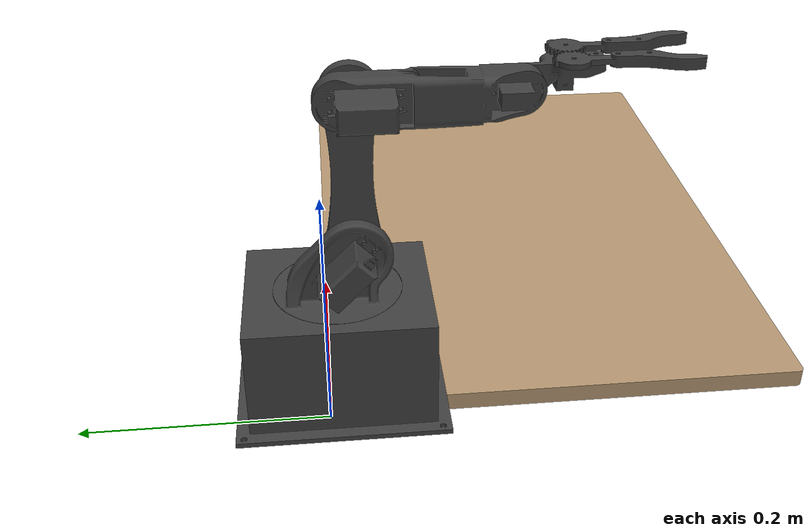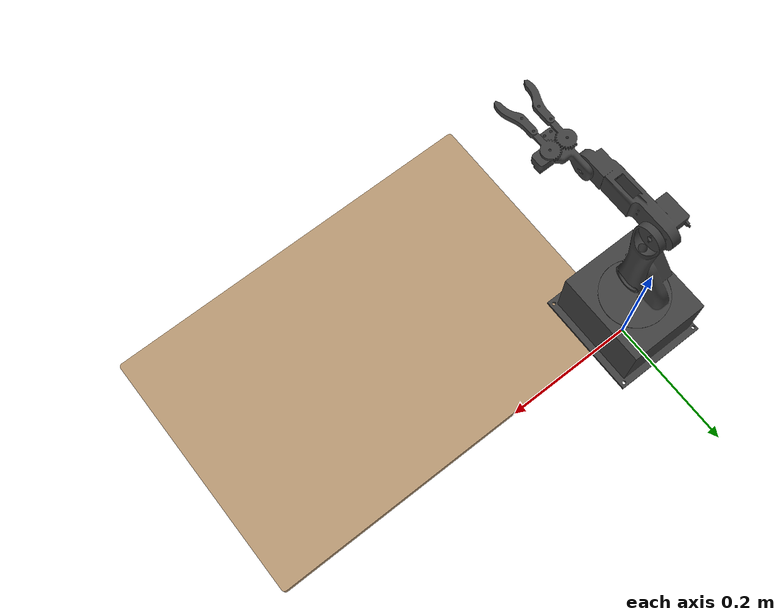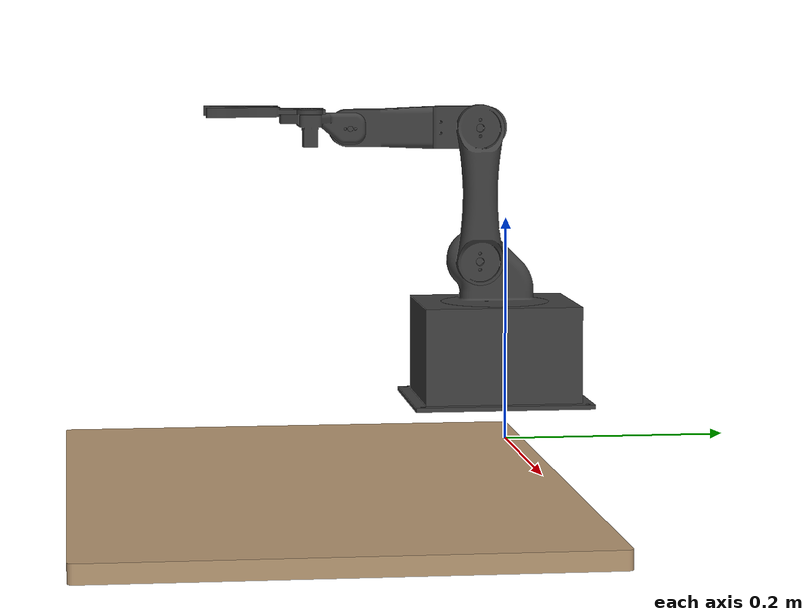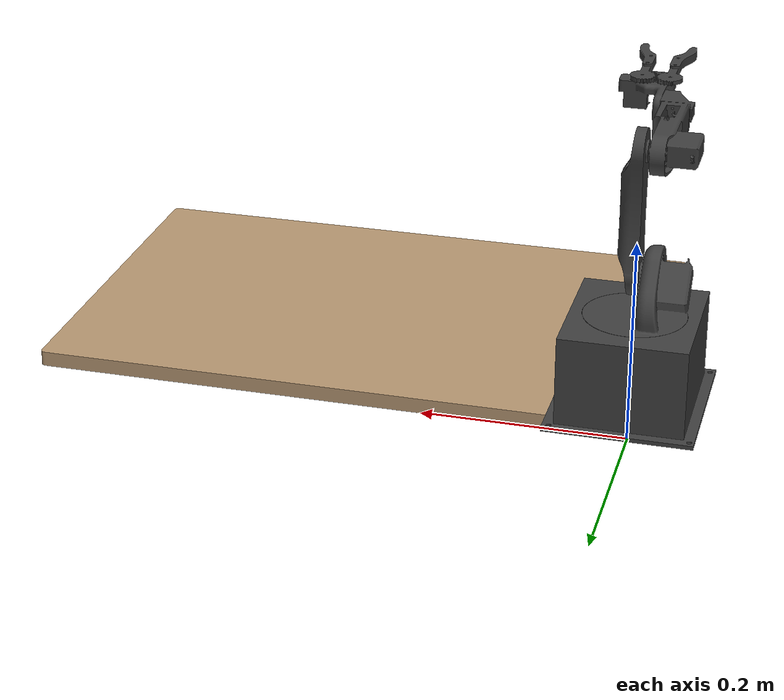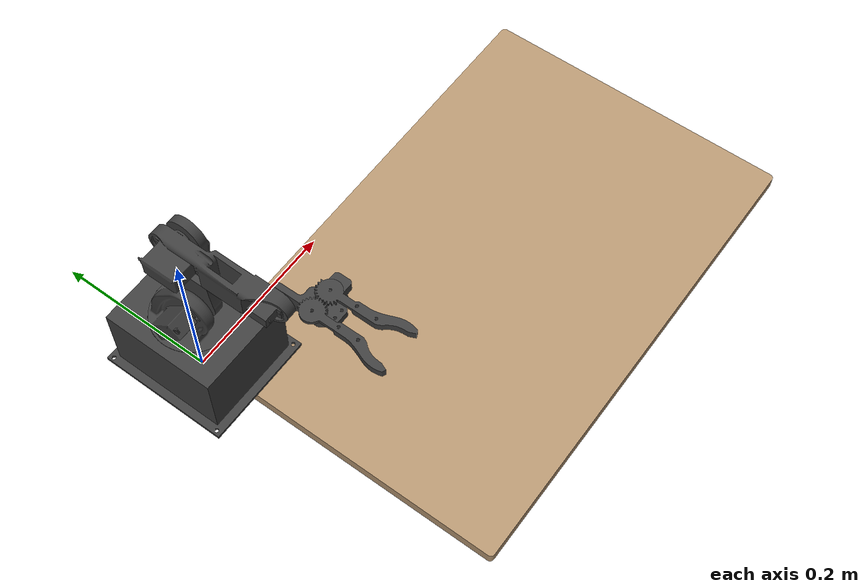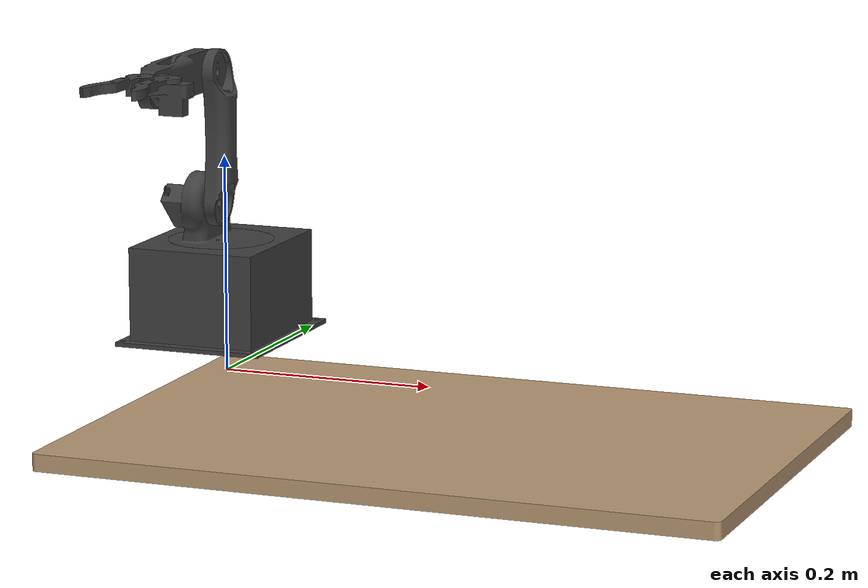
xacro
<?xml version="1.0" ?>
<robot name="robotic_arm" xmlns:xacro="http://www.ros.org/wiki/xacro">

<xacro:include filename="$(find robotic_arm_description)/urdf/materials.xacro" />
<xacro:include filename="$(find robotic_arm_description)/urdf/robotic_arm.trans" />
<xacro:include filename="$(find robotic_arm_description)/urdf/robotic_arm_gazebo.xacro"/>
<xacro:include filename="$(find robotic_arm_description)/urdf/robotic_arm_controllers.xacro"/>

<!-- Properties -->
<xacro:property name="PI" value="1.570796"/>

<!-- Links -->
<link name = "world"/>

<link name="base_link">
  <inertial>
    <origin xyz="4.1292719567255465e-17 -0.1275 0.0075" rpy="0 0 0"/>
    <mass value="2.5408670074548567"/>
    <inertia ixx="0.033061" iyy="0.074955" izz="0.107921" ixy="-0.0" iyz="0.0" ixz="0.0"/>
  </inertial>
  <visual>
    <origin xyz="0 0 0" rpy="0 0 0"/>
    <geometry>
      <mesh filename="package://robotic_arm_description/meshes/base_link.stl" scale="0.001 0.001 0.001"/>
    </geometry>
    <material name="oak"/>
  </visual>
  <collision>
    <origin xyz="0 0 0" rpy="0 0 0"/>
    <geometry>
      <mesh filename="package://robotic_arm_description/meshes/base_link.stl" scale="0.001 0.001 0.001"/>
    </geometry>
  </collision>
</link>

<link name="base">
  <inertial>
    <origin xyz="3.3070895591155684e-07 -0.06999939486232219 0.051365620594267386" rpy="0 0 0"/>
    <mass value="0.5102582987586253"/>
    <inertia ixx="0.001541" iyy="0.00162" izz="0.002267" ixy="0.0" iyz="0.0" ixz="0.0"/>
  </inertial>
  <visual>
    <origin xyz="-0.0 -0.07 -0.015" rpy="0 0 0"/>
    <geometry>
      <mesh filename="package://robotic_arm_description/meshes/base.stl" scale="0.001 0.001 0.001"/>
    </geometry>
    <material name="pa_12_nylon_pa_603cf_with_eos_p_3d_printers"/>
  </visual>
  <collision>
    <origin xyz="-0.0 -0.07 -0.015" rpy="0 0 0"/>
    <geometry>
      <mesh filename="package://robotic_arm_description/meshes/base.stl" scale="0.001 0.001 0.001"/>
    </geometry>
  </collision>
</link>

<link name="waist">
  <inertial>
    <origin xyz="-0.013899791072812253 -0.003284120079222943 0.02372142968591144" rpy="0 0 0"/>
    <mass value="0.11734363935702768"/>
    <inertia ixx="8.6e-05" iyy="7.9e-05" izz="8.5e-05" ixy="-3e-06" iyz="1.1e-05" ixz="1.4e-05"/>
  </inertial>
  <visual>
    <origin xyz="0.0 0.0 -0.101" rpy="0 0 0"/>
    <geometry>
      <mesh filename="package://robotic_arm_description/meshes/waist.stl" scale="0.001 0.001 0.001"/>
    </geometry>
    <material name="pa_12_nylon_pa_603cf_with_eos_p_3d_printers"/>
  </visual>
  <collision>
    <origin xyz="0.0 0.0 -0.101" rpy="0 0 0"/>
    <geometry>
      <mesh filename="package://robotic_arm_description/meshes/waist.stl" scale="0.001 0.001 0.001"/>
    </geometry>
  </collision>
</link>

<link name="link_1">
  <inertial>
    <origin xyz="0.007817729878361625 -4.0523557253042963e-07 0.06000021649587692" rpy="0 0 0"/>
    <mass value="0.07112302510728019"/>
    <inertia ixx="0.000121" iyy="0.000116" izz="1e-05" ixy="0.0" iyz="-0.0" ixz="0.0"/>
  </inertial>
  <visual>
    <origin xyz="0.001 0.014069 -0.141262" rpy="0 0 0"/>
    <geometry>
      <mesh filename="package://robotic_arm_description/meshes/link_1.stl" scale="0.001 0.001 0.001"/>
    </geometry>
    <material name="pa_12_nylon_pa_603cf_with_eos_p_3d_printers"/>
  </visual>
  <collision>
    <origin xyz="0.001 0.014069 -0.141262" rpy="0 0 0"/>
    <geometry>
      <mesh filename="package://robotic_arm_description/meshes/link_1.stl" scale="0.001 0.001 0.001"/>
    </geometry>
  </collision>
</link>

<link name="link_2">
  <inertial>
    <origin xyz="-0.01594540180295605 -0.046193837589282 4.672518474457821e-05" rpy="0 0 0"/>
    <mass value="0.11456681455688399"/>
    <inertia ixx="0.000224" iyy="2.7e-05" izz="0.00023" ixy="2.7e-05" iyz="0.0" ixz="-0.0"/>
  </inertial>
  <visual>
    <origin xyz="0.001 0.014069 -0.261262" rpy="0 0 0"/>
    <geometry>
      <mesh filename="package://robotic_arm_description/meshes/link_2.stl" scale="0.001 0.001 0.001"/>
    </geometry>
    <material name="pa_12_nylon_pa_603cf_with_eos_p_3d_printers"/>
  </visual>
  <collision>
    <origin xyz="0.001 0.014069 -0.261262" rpy="0 0 0"/>
    <geometry>
      <mesh filename="package://robotic_arm_description/meshes/link_2.stl" scale="0.001 0.001 0.001"/>
    </geometry>
  </collision>
</link>

<link name="gripper_base">
  <inertial>
    <origin xyz="0.016989765812988437 -0.03097536759348493 0.0043010847265131935" rpy="0 0 0"/>
    <mass value="0.02850874527831614"/>
    <inertia ixx="1e-05" iyy="7e-06" izz="1.4e-05" ixy="3e-06" iyz="1e-06" ixz="1e-06"/>
  </inertial>
  <visual>
    <origin xyz="-0.00285 0.131419 -0.261562" rpy="0 0 0"/>
    <geometry>
      <mesh filename="package://robotic_arm_description/meshes/gripper_base.stl" scale="0.001 0.001 0.001"/>
    </geometry>
    <material name="pa_12_nylon_pa_603cf_with_eos_p_3d_printers"/>
  </visual>
  <collision>
    <origin xyz="-0.00285 0.131419 -0.261562" rpy="0 0 0"/>
    <geometry>
      <mesh filename="package://robotic_arm_description/meshes/gripper_base.stl" scale="0.001 0.001 0.001"/>
    </geometry>
  </collision>
</link>

<link name="gripper_finger_1">
  <inertial>
    <origin xyz="0.0025925452739243675 -0.04003700818287059 0.002000392615642277" rpy="0 0 0"/>
    <mass value="0.00844478254120791"/>
    <inertia ixx="7e-06" iyy="0.0" izz="8e-06" ixy="1e-06" iyz="0.0" ixz="0.0"/>
  </inertial>
  <visual>
    <origin xyz="-0.02875 0.169419 -0.276912" rpy="0 0 0"/>
    <geometry>
      <mesh filename="package://robotic_arm_description/meshes/gripper_finger_1.stl" scale="0.001 0.001 0.001"/>
    </geometry>
    <material name="pa_12_nylon_pa_603cf_with_eos_p_3d_printers"/>
  </visual>
  <collision>
    <origin xyz="-0.02875 0.169419 -0.276912" rpy="0 0 0"/>
    <geometry>
      <mesh filename="package://robotic_arm_description/meshes/gripper_finger_1.stl" scale="0.001 0.001 0.001"/>
    </geometry>
  </collision>
</link>

<link name="gripper_finger_2">
  <inertial>
    <origin xyz="-0.00259254527392403 -0.04003700818287059 0.002000392615642388" rpy="0 0 0"/>
    <mass value="0.00844478254120791"/>
    <inertia ixx="7e-06" iyy="0.0" izz="8e-06" ixy="-1e-06" iyz="0.0" ixz="-0.0"/>
  </inertial>
  <visual>
    <origin xyz="-0.00185 0.169419 -0.275562" rpy="0 0 0"/>
    <geometry>
      <mesh filename="package://robotic_arm_description/meshes/gripper_finger_2.stl" scale="0.001 0.001 0.001"/>
    </geometry>
    <material name="pa_12_nylon_pa_603cf_with_eos_p_3d_printers"/>
  </visual>
  <collision>
    <origin xyz="-0.00185 0.169419 -0.275562" rpy="0 0 0"/>
    <geometry>
      <mesh filename="package://robotic_arm_description/meshes/gripper_finger_2.stl" scale="0.001 0.001 0.001"/>
    </geometry>
  </collision>
</link>

<joint name = "virtual_joint" type= "fixed">
  <origin xyz="0.0 0.0 0.0" rpy="0.0 0.0 0.0"/>
  <parent link="world"/>
  <child link="base_link"/>
</joint>

<joint name="rigid_1" type="fixed">
  <origin xyz="0.0 0.07 0.015" rpy="0 0 0"/>
  <parent link="base_link"/>
  <child link="base"/>
</joint>

<joint name="base_waist_joint" type="revolute">
  <origin xyz="-0.0 -0.07 0.086" rpy="0 0 0"/>
  <parent link="base"/>
  <child link="waist"/>
  <axis xyz="0.0 0.0 1.0"/>
  <limit upper="1.570796" lower="-1.570796" effort="100" velocity="100"/>
</joint>

<joint name="waist_link1_joint" type="revolute">
  <origin xyz="-0.001 -0.014069 0.040262" rpy="0 0 0"/>
  <parent link="waist"/>
  <child link="link_1"/>
  <axis xyz="1.0 0.0 -0.0"/>
  <limit upper="1.570796" lower="-1.570796" effort="100" velocity="100"/>
</joint>

<joint name="link1_link2_joint" type="revolute">
  <origin xyz="0.0 0.0 0.12" rpy="0 0 0"/>
  <parent link="link_1"/>
  <child link="link_2"/>
  <axis xyz="-1.0 0.0 -0.0"/>
  <limit upper="3.141593" lower="0.0" effort="100" velocity="100"/>
</joint>

<joint name="link2_gripper_base_joint" type="revolute">
  <origin xyz="0.00385 -0.11735 0.0003" rpy="0 0 0"/>
  <parent link="link_2"/>
  <child link="gripper_base"/>
  <axis xyz="1.0 0.0 0.0"/>
  <limit upper="1.570796" lower="-1.570796" effort="100" velocity="100"/>
</joint>

<joint name="right_gripper_joint" type="revolute">
  <origin xyz="-0.001 -0.038 0.014" rpy="0 0 0"/>
  <parent link="gripper_base"/>
  <child link="gripper_finger_2"/>
  <axis xyz="0.0 0.0 -1.0"/>
  <limit upper="0.785398" lower="0.0" effort="100" velocity="100"/>
</joint>

<joint name="left_gripper_joint" type="revolute">
  <origin xyz="0.0259 -0.038 0.01535" rpy="0 0 0"/>
  <parent link="gripper_base"/>
  <child link="gripper_finger_1"/>
  <axis xyz="-0.0 -0.0 1.0"/>
  <mimic joint = "right_gripper_joint" multiplier = "1.0"/>
  <limit upper="-0.785398" lower="0.0" effort="100" velocity="100"/>
</joint>

</robot>

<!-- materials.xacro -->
<robot name="robotic_arm" xmlns:xacro="http://www.ros.org/wiki/xacro" >

<material name="silver_default">
  <color rgba="0.700 0.700 0.700 1.000"/>
</material>

<material name="oak">
  <color rgba="0.7098 0.5882 0.4431 1.000"/>
</material>

<material name="pa_12_nylon_pa_603cf_with_eos_p_3d_printers">
  <color rgba="0.24705882352941178 0.24705882352941178 0.24705882352941178 1.0"/>
</material>
<material name="paint_enamel_glossy_blue">
  <color rgba="0.18823529411764706 0.23137254901960785 0.5882352941176471 1.0"/>
</material>
<material name="opaque160160160">
  <color rgba="0.6274509803921569 0.6274509803921569 0.6274509803921569 1.0"/>
</material>

</robot>

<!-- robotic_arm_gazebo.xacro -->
<robot name="robotic_arm" xmlns:xacro="http://www.ros.org/wiki/xacro" >

<xacro:property name="base_color" value = "Gazebo/Oak"/>
<xacro:property name="waist_color" value = "Gazebo/FlatBlack" />
<xacro:property name="link_1_color" value = "Gazebo/FlatBlack"/>
<xacro:property name="link_2_color" value = "Gazebo/FlatBlack" />
<xacro:property name="gripper_base_color" value = "Gazebo/FlatBlack" />
<xacro:property name="motor_color" value="Gazebo/Blue" />
<xacro:property name="gripper_gears" value="GazeboGrey"/>
<xacro:property name="gripper_color" value="Gazebo/DarkGrey" />

<gazebo>
        <plugin filename="libgazebo_ros2_control.so" name="gazebo_ros2_control">
            <robot_param> robot_description</robot_param>
            <robot_param_node> robot_state_publisher</robot_param_node>
            <parameters>$(find robotic_arm_controllers)/config/robot_arm_controllers.yaml</parameters>
        </plugin>
</gazebo>

<gazebo reference="base_link">
  <material>${base_color}</material>
  <mu1>0.2</mu1>
  <mu2>0.2</mu2>
  <self_collide>true</self_collide>
  <gravity>true</gravity>
</gazebo>

<gazebo reference="base_v2_1">
  <material>${waist_color}</material>
  <mu1>0.2</mu1>
  <mu2>0.2</mu2>
  <self_collide>true</self_collide>
</gazebo>

<gazebo reference="waist_v6_1">
  <material>${waist_color}</material>
  <mu1>0.2</mu1>
  <mu2>0.2</mu2>
  <self_collide>true</self_collide>
</gazebo>

<gazebo reference="link_1_v5_1">
  <material>${link_1_color}</material>
  <mu1>0.2</mu1>
  <mu2>0.2</mu2>
  <self_collide>true</self_collide>
</gazebo>

<gazebo reference="link_2a_v4_1">
  <material>${link_2_color}</material>
  <mu1>0.2</mu1>
  <mu2>0.2</mu2>
  <self_collide>true</self_collide>
</gazebo>

<gazebo reference="link_2b_v4_1">
  <material>${link_2_color}</material>
  <mu1>0.2</mu1>
  <mu2>0.2</mu2>
  <self_collide>true</self_collide>
</gazebo>

<gazebo reference="gripper_base_v8_1">
  <material>${gripper_base_color}</material>
  <mu1>0.2</mu1>
  <mu2>0.2</mu2>
  <self_collide>true</self_collide>
</gazebo>

<gazebo reference="servomotormicro9g_v2_1">
  <material>${motor_color}</material>
  <mu1>0.2</mu1>
  <mu2>0.2</mu2>
  <self_collide>true</self_collide>
</gazebo>

<gazebo reference="servomotormg996r_v2_2">
  <material>${motor_color}</material>
  <mu1>0.2</mu1>
  <mu2>0.2</mu2>
  <self_collide>true</self_collide>
</gazebo>

<gazebo reference="servomotormicro9g_v2_2">
  <material>${motor_color}</material>
  <mu1>0.2</mu1>
  <mu2>0.2</mu2>
  <self_collide>true</self_collide>
</gazebo>

<gazebo reference="servomotormg996r_v2_3">
  <material>${motor_color}</material>
  <mu1>0.2</mu1>
  <mu2>0.2</mu2>
  <self_collide>true</self_collide>
</gazebo>

<gazebo reference="gripper_gear_1_v2_1">
  <material>${gripper_gears}</material>
  <mu1>0.2</mu1>
  <mu2>0.2</mu2>
  <self_collide>true</self_collide>
</gazebo>

<gazebo reference="gripper_gear_2_v2_1">
  <material>${gripper_gears}</material>
  <mu1>0.2</mu1>
  <mu2>0.2</mu2>
  <self_collide>true</self_collide>
</gazebo>

<gazebo reference="gripper_v3_1">
  <material>${gripper_color}</material>
  <mu1>0.2</mu1>
  <mu2>0.2</mu2>
  <self_collide>true</self_collide>
</gazebo>

<gazebo reference="gripper_v3_2">
  <material>${gripper_color}</material>
  <mu1>0.2</mu1>
  <mu2>0.2</mu2>
  <self_collide>true</self_collide>
</gazebo>

<gazebo reference="gripper_v3_3">
  <material>${gripper_color}</material>
  <mu1>0.2</mu1>
  <mu2>0.2</mu2>
  <self_collide>true</self_collide>
</gazebo>

<gazebo reference="gripper_v3_4">
  <material>${gripper_color}</material>
  <mu1>0.2</mu1>
  <mu2>0.2</mu2>
  <self_collide>true</self_collide>
</gazebo>

</robot>
